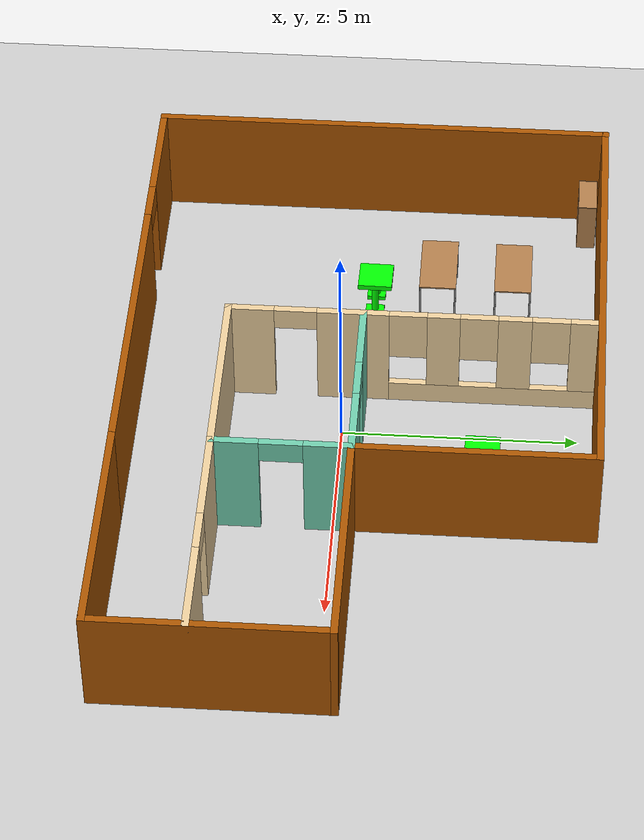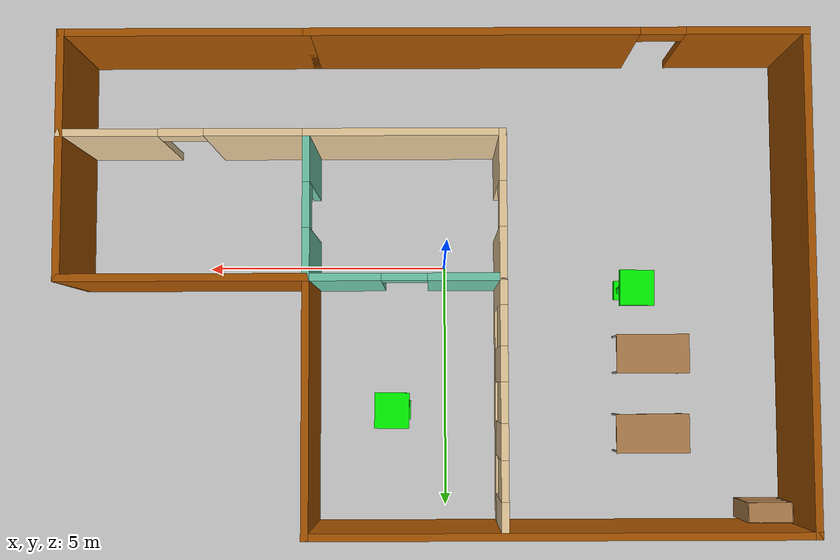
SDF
<sdf version="1.6">
 <world name="default">
  <plugin name="hello" filename="libhello.so"/>
  <light name="sun" type="directional">
   <pose>0 0 10 0 -0 0</pose>
   <diffuse>0.8 0.8 0.8 1</diffuse>
   <specular>0.1 0.1 0.1 1</specular>
   <attenuation>
    <range>1000</range>
    <constant>0.9</constant>
    <linear>0.01</linear>
    <quadratic>0.001</quadratic>
   </attenuation>
   <direction>-0.5 0.5 -1</direction>
  </light>
  <model name="ground_plane">
   <static>1</static>
   <link name="link">
    <collision name="collision">
     <geometry><plane><normal>0 0 1</normal><size>100 100</size></plane></geometry>
     <surface>
      <contact><collide_bitmask>65535</collide_bitmask></contact>
      <friction><ode><mu>100</mu><mu2>50</mu2></ode></friction>
     </surface>
    </collision>
    <visual name="visual">
     <cast_shadows>0</cast_shadows>
     <geometry><plane><normal>0 0 1</normal><size>100 100</size></plane></geometry>
     <material>
      <script><uri>file://media/materials/scripts/gazebo.material</uri><name>Gazebo/Grey</name></script>
     </material>
    </visual>
   </link>
  </model>
  <gravity>0 0 -9.8</gravity>
  <magnetic_field>6e-06 2.3e-05 -4.2e-05</magnetic_field>
  <atmosphere type="adiabatic"/>
  <physics name="default_physics" default="0" type="ode">
   <max_step_size>0.001</max_step_size>
   <real_time_factor>1</real_time_factor>
   <real_time_update_rate>1000</real_time_update_rate>
  </physics>
  <scene><ambient>0.4 0.4 0.4 1</ambient><background>0.7 0.7 0.7 1</background><shadows>1</shadows></scene>
  <spherical_coordinates>
   <surface_model>EARTH_WGS84</surface_model>
   <latitude_deg>0</latitude_deg>
   <longitude_deg>0</longitude_deg>
   <elevation>0</elevation>
   <heading_deg>0</heading_deg>
  </spherical_coordinates>
  <model name="Building">
   <pose>0.22127 0.472438 0 0 -0 0</pose>
   <link name="Wall_19">
    <collision name="Wall_19_Collision">
     <geometry><box><size>10 0.15 2.5</size></box></geometry>
     <pose>0 0 1.25 0 -0 0</pose>
    </collision>
    <visual name="Wall_19_Visual">
     <pose>0 0 1.25 0 -0 0</pose>
     <geometry><box><size>10 0.15 2.5</size></box></geometry>
     <material>
      <script><uri>file://media/materials/scripts/gazebo.material</uri><name>Gazebo/Grey</name></script>
      <ambient>0.666667 0.333333 0 1</ambient>
     </material>
     <meta><layer>0</layer></meta>
    </visual>
    <pose>-7.35 0 0 0 0 -1.5708</pose>
   </link>
   <link name="Wall_20">
    <pose>-2.425 -4.925 0 0 -0 0</pose>
    <visual name="Wall_20_Visual_0">
     <pose>-3.77711 0 1.25 0 -0 0</pose>
     <geometry><box><size>2.44579 0.15 2.5</size></box></geometry>
     <material>
      <script><uri>file://media/materials/scripts/gazebo.material</uri><name>Gazebo/Grey</name></script>
      <ambient>0.666667 0.333333 0 1</ambient>
     </material>
     <meta><layer>0</layer></meta>
    </visual>
    <collision name="Wall_20_Collision_0">
     <geometry><box><size>2.44579 0.15 2.5</size></box></geometry>
     <pose>-3.77711 0 1.25 0 -0 0</pose>
    </collision>
    <visual name="Wall_20_Visual_1">
     <pose>1.67289 0 1.25 0 -0 0</pose>
     <geometry><box><size>6.65421 0.15 2.5</size></box></geometry>
     <material>
      <script><uri>file://media/materials/scripts/gazebo.material</uri><name>Gazebo/Grey</name></script>
      <ambient>0.666667 0.333333 0 1</ambient>
     </material>
     <meta><layer>0</layer></meta>
    </visual>
    <collision name="Wall_20_Collision_1">
     <geometry><box><size>6.65421 0.15 2.5</size></box></geometry>
     <pose>1.67289 0 1.25 0 -0 0</pose>
    </collision>
    <visual name="Wall_20_Visual_2">
     <pose>-2.10421 0 2.25 0 -0 0</pose>
     <geometry><box><size>0.9 0.15 0.5</size></box></geometry>
     <material>
      <script><uri>file://media/materials/scripts/gazebo.material</uri><name>Gazebo/Grey</name></script>
      <ambient>0.666667 0.333333 0 1</ambient>
     </material>
     <meta><layer>0</layer></meta>
    </visual>
    <collision name="Wall_20_Collision_2">
     <geometry><box><size>0.9 0.15 0.5</size></box></geometry>
     <pose>-2.10421 0 2.25 0 -0 0</pose>
    </collision>
   </link>
   <link name="Wall_22">
    <pose>0.575 -0.075 0 0 -0 3.14159</pose>
    <visual name="Wall_22_Visual_0">
     <pose>-1.22681 0 1.25 0 -0 0</pose>
     <geometry><box><size>1.54637 0.15 2.5</size></box></geometry>
     <material>
      <script><uri>file://media/materials/scripts/gazebo.material</uri><name>Gazebo/Grey</name></script>
      <ambient>0.435294 0.796078 0.67451 1</ambient>
     </material>
     <meta><layer>0</layer></meta>
    </visual>
    <collision name="Wall_22_Collision_0">
     <geometry><box><size>1.54637 0.15 2.5</size></box></geometry>
     <pose>-1.22681 0 1.25 0 -0 0</pose>
    </collision>
    <visual name="Wall_22_Visual_1">
     <pose>1.22319 0 1.25 0 -0 0</pose>
     <geometry><box><size>1.55363 0.15 2.5</size></box></geometry>
     <material>
      <script><uri>file://media/materials/scripts/gazebo.material</uri><name>Gazebo/Grey</name></script>
      <ambient>0.435294 0.796078 0.67451 1</ambient>
     </material>
     <meta><layer>0</layer></meta>
    </visual>
    <collision name="Wall_22_Collision_1">
     <geometry><box><size>1.55363 0.15 2.5</size></box></geometry>
     <pose>1.22319 0 1.25 0 -0 0</pose>
    </collision>
    <visual name="Wall_22_Visual_2">
     <pose>-0.003626 0 2.25 0 -0 0</pose>
     <geometry><box><size>0.9 0.15 0.5</size></box></geometry>
     <material>
      <script><uri>file://media/materials/scripts/gazebo.material</uri><name>Gazebo/Grey</name></script>
      <ambient>0.435294 0.796078 0.67451 1</ambient>
     </material>
     <meta><layer>0</layer></meta>
    </visual>
    <collision name="Wall_22_Collision_2">
     <geometry><box><size>0.9 0.15 0.5</size></box></geometry>
     <pose>-0.003626 0 2.25 0 -0 0</pose>
    </collision>
   </link>
   <link name="Wall_25">
    <collision name="Wall_25_Collision">
     <geometry><box><size>10 0.15 2.5</size></box></geometry>
     <pose>0 0 1.25 0 -0 0</pose>
    </collision>
    <visual name="Wall_25_Visual">
     <pose>0 0 1.25 0 -0 0</pose>
     <geometry><box><size>10 0.15 2.5</size></box></geometry>
     <material>
      <script><uri>file://media/materials/scripts/gazebo.material</uri><name>Gazebo/Grey</name></script>
      <ambient>0.666667 0.333333 0 1</ambient>
     </material>
     <meta><layer>0</layer></meta>
    </visual>
    <pose>-2.425 4.925 0 0 -0 0</pose>
   </link>
   <link name="Wall_26">
    <collision name="Wall_26_Collision">
     <geometry><box><size>5.15 0.15 2.5</size></box></geometry>
     <pose>0 0 1.25 0 -0 0</pose>
    </collision>
    <visual name="Wall_26_Visual">
     <pose>0 0 1.25 0 -0 0</pose>
     <geometry><box><size>5.15 0.15 2.5</size></box></geometry>
     <material>
      <script><uri>file://media/materials/scripts/gazebo.material</uri><name>Gazebo/Grey</name></script>
      <ambient>0.666667 0.333333 0 1</ambient>
     </material>
     <meta><layer>0</layer></meta>
    </visual>
    <pose>2.5 2.425 0 0 0 -1.5708</pose>
   </link>
   <link name="Wall_28">
    <pose>-1.35 2.35 0 0 -0 1.5708</pose>
    <visual name="Wall_28_Visual_0">
     <pose>-2.19175 0 1.25 0 -0 0</pose>
     <geometry><box><size>0.616494 0.15 2.5</size></box></geometry>
     <material>
      <script><uri>file://media/materials/scripts/gazebo.material</uri><name>Gazebo/Grey</name></script>
      <ambient>0.921569 0.807843 0.615686 1</ambient>
     </material>
     <meta><layer>0</layer></meta>
    </visual>
    <collision name="Wall_28_Collision_0">
     <geometry><box><size>0.616494 0.15 2.5</size></box></geometry>
     <pose>-2.19175 0 1.25 0 -0 0</pose>
    </collision>
    <visual name="Wall_28_Visual_1">
     <pose>0.308247 0 0.25 0 -0 0</pose>
     <geometry><box><size>4.38351 0.15 0.5</size></box></geometry>
     <material>
      <script><uri>file://media/materials/scripts/gazebo.material</uri><name>Gazebo/Grey</name></script>
      <ambient>0.921569 0.807843 0.615686 1</ambient>
     </material>
     <meta><layer>0</layer></meta>
    </visual>
    <collision name="Wall_28_Collision_1">
     <geometry><box><size>4.38351 0.15 0.5</size></box></geometry>
     <pose>0.308247 0 0.25 0 -0 0</pose>
    </collision>
    <visual name="Wall_28_Visual_2">
     <pose>-0.737291 0 1.5 0 -0 0</pose>
     <geometry><box><size>0.692431 0.15 2</size></box></geometry>
     <material>
      <script><uri>file://media/materials/scripts/gazebo.material</uri><name>Gazebo/Grey</name></script>
      <ambient>0.921569 0.807843 0.615686 1</ambient>
     </material>
     <meta><layer>0</layer></meta>
    </visual>
    <collision name="Wall_28_Collision_2">
     <geometry><box><size>0.692431 0.15 2</size></box></geometry>
     <pose>-0.737291 0 1.5 0 -0 0</pose>
    </collision>
    <visual name="Wall_28_Visual_3">
     <pose>0.763619 0 1.5 0 -0 0</pose>
     <geometry><box><size>0.70939 0.15 2</size></box></geometry>
     <material>
      <script><uri>file://media/materials/scripts/gazebo.material</uri><name>Gazebo/Grey</name></script>
      <ambient>0.921569 0.807843 0.615686 1</ambient>
     </material>
     <meta><layer>0</layer></meta>
    </visual>
    <collision name="Wall_28_Collision_3">
     <geometry><box><size>0.70939 0.15 2</size></box></geometry>
     <pose>0.763619 0 1.5 0 -0 0</pose>
    </collision>
    <visual name="Wall_28_Visual_4">
     <pose>2.20916 0 1.5 0 -0 0</pose>
     <geometry><box><size>0.581686 0.15 2</size></box></geometry>
     <material>
      <script><uri>file://media/materials/scripts/gazebo.material</uri><name>Gazebo/Grey</name></script>
      <ambient>0.921569 0.807843 0.615686 1</ambient>
     </material>
     <meta><layer>0</layer></meta>
    </visual>
    <collision name="Wall_28_Collision_4">
     <geometry><box><size>0.581686 0.15 2</size></box></geometry>
     <pose>2.20916 0 1.5 0 -0 0</pose>
    </collision>
    <visual name="Wall_28_Visual_5">
     <pose>-1.48351 0 1.9 0 -0 0</pose>
     <geometry><box><size>0.8 0.15 1.2</size></box></geometry>
     <material>
      <script><uri>file://media/materials/scripts/gazebo.material</uri><name>Gazebo/Grey</name></script>
      <ambient>0.921569 0.807843 0.615686 1</ambient>
     </material>
     <meta><layer>0</layer></meta>
    </visual>
    <collision name="Wall_28_Collision_5">
     <geometry><box><size>0.8 0.15 1.2</size></box></geometry>
     <pose>-1.48351 0 1.9 0 -0 0</pose>
    </collision>
    <visual name="Wall_28_Visual_6">
     <pose>0.008924 0 1.9 0 -0 0</pose>
     <geometry><box><size>0.8 0.15 1.2</size></box></geometry>
     <material>
      <script><uri>file://media/materials/scripts/gazebo.material</uri><name>Gazebo/Grey</name></script>
      <ambient>0.921569 0.807843 0.615686 1</ambient>
     </material>
     <meta><layer>0</layer></meta>
    </visual>
    <collision name="Wall_28_Collision_6">
     <geometry><box><size>0.8 0.15 1.2</size></box></geometry>
     <pose>0.008924 0 1.9 0 -0 0</pose>
    </collision>
    <visual name="Wall_28_Visual_7">
     <pose>1.51831 0 1.9 0 -0 0</pose>
     <geometry><box><size>0.8 0.15 1.2</size></box></geometry>
     <material>
      <script><uri>file://media/materials/scripts/gazebo.material</uri><name>Gazebo/Grey</name></script>
      <ambient>0.921569 0.807843 0.615686 1</ambient>
     </material>
     <meta><layer>0</layer></meta>
    </visual>
    <collision name="Wall_28_Collision_7">
     <geometry><box><size>0.8 0.15 1.2</size></box></geometry>
     <pose>1.51831 0 1.9 0 -0 0</pose>
    </collision>
   </link>
   <link name="Wall_30">
    <collision name="Wall_30_Collision">
     <geometry><box><size>5 0.15 2.5</size></box></geometry>
     <pose>0 0 1.25 0 -0 0</pose>
    </collision>
    <visual name="Wall_30_Visual">
     <pose>0 0 1.25 0 -0 0</pose>
     <geometry><box><size>5 0.15 2.5</size></box></geometry>
     <material>
      <script><uri>file://media/materials/scripts/gazebo.material</uri><name>Gazebo/Grey</name></script>
      <ambient>0.666667 0.333333 0 1</ambient>
     </material>
     <meta><layer>0</layer></meta>
    </visual>
    <pose>4.925 -0.075 0 0 -0 0</pose>
   </link>
   <link name="Wall_32">
    <collision name="Wall_32_Collision">
     <geometry><box><size>5 0.15 2.5</size></box></geometry>
     <pose>0 0 1.25 0 -0 0</pose>
    </collision>
    <visual name="Wall_32_Visual">
     <pose>0 0 1.25 0 -0 0</pose>
     <geometry><box><size>5 0.15 2.5</size></box></geometry>
     <material>
      <script><uri>file://media/materials/scripts/gazebo.material</uri><name>Gazebo/Grey</name></script>
      <ambient>0.666667 0.333333 0 1</ambient>
     </material>
     <meta><layer>0</layer></meta>
    </visual>
    <pose>4.925 -4.925 0 0 -0 0</pose>
   </link>
   <link name="Wall_33">
    <collision name="Wall_33_Collision">
     <geometry><box><size>5 0.15 2.5</size></box></geometry>
     <pose>0 0 1.25 0 -0 0</pose>
    </collision>
    <visual name="Wall_33_Visual">
     <pose>0 0 1.25 0 -0 0</pose>
     <geometry><box><size>5 0.15 2.5</size></box></geometry>
     <material>
      <script><uri>file://media/materials/scripts/gazebo.material</uri><name>Gazebo/Grey</name></script>
      <ambient>0.666667 0.333333 0 1</ambient>
     </material>
     <meta><layer>0</layer></meta>
    </visual>
    <pose>7.35 -2.5 0 0 -0 1.5708</pose>
   </link>
   <link name="Wall_39">
    <pose>2.5 -1.5 0 0 0 -1.5708</pose>
    <visual name="Wall_39_Visual_0">
     <pose>-0.975473 0 1.25 0 -0 0</pose>
     <geometry><box><size>1.04905 0.15 2.5</size></box></geometry>
     <material>
      <script><uri>file://media/materials/scripts/gazebo.material</uri><name>Gazebo/Grey</name></script>
      <ambient>0.435294 0.796078 0.67451 1</ambient>
     </material>
     <meta><layer>0</layer></meta>
    </visual>
    <collision name="Wall_39_Collision_0">
     <geometry><box><size>1.04905 0.15 2.5</size></box></geometry>
     <pose>-0.975473 0 1.25 0 -0 0</pose>
    </collision>
    <visual name="Wall_39_Visual_1">
     <pose>0.974527 0 1.25 0 -0 0</pose>
     <geometry><box><size>1.05095 0.15 2.5</size></box></geometry>
     <material>
      <script><uri>file://media/materials/scripts/gazebo.material</uri><name>Gazebo/Grey</name></script>
      <ambient>0.435294 0.796078 0.67451 1</ambient>
     </material>
     <meta><layer>0</layer></meta>
    </visual>
    <collision name="Wall_39_Collision_1">
     <geometry><box><size>1.05095 0.15 2.5</size></box></geometry>
     <pose>0.974527 0 1.25 0 -0 0</pose>
    </collision>
    <visual name="Wall_39_Visual_2">
     <pose>-0.000946 0 2.25 0 -0 0</pose>
     <geometry><box><size>0.9 0.15 0.5</size></box></geometry>
     <material>
      <script><uri>file://media/materials/scripts/gazebo.material</uri><name>Gazebo/Grey</name></script>
      <ambient>0.435294 0.796078 0.67451 1</ambient>
     </material>
     <meta><layer>0</layer></meta>
    </visual>
    <collision name="Wall_39_Collision_2">
     <geometry><box><size>0.9 0.15 0.5</size></box></geometry>
     <pose>-0.000946 0 2.25 0 -0 0</pose>
    </collision>
   </link>
   <link name="Wall_40">
    <pose>4.925 -2.925 0 0 -0 0</pose>
    <visual name="Wall_40_Visual_0">
     <pose>-1.45777 0 1.25 0 -0 0</pose>
     <geometry><box><size>2.08446 0.15 2.5</size></box></geometry>
     <material>
      <script><uri>file://media/materials/scripts/gazebo.material</uri><name>Gazebo/Grey</name></script>
      <ambient>0.921569 0.807843 0.615686 1</ambient>
     </material>
     <meta><layer>0</layer></meta>
    </visual>
    <collision name="Wall_40_Collision_0">
     <geometry><box><size>2.08446 0.15 2.5</size></box></geometry>
     <pose>-1.45777 0 1.25 0 -0 0</pose>
    </collision>
    <visual name="Wall_40_Visual_1">
     <pose>1.49223 0 1.25 0 -0 0</pose>
     <geometry><box><size>2.01554 0.15 2.5</size></box></geometry>
     <material>
      <script><uri>file://media/materials/scripts/gazebo.material</uri><name>Gazebo/Grey</name></script>
      <ambient>0.921569 0.807843 0.615686 1</ambient>
     </material>
     <meta><layer>0</layer></meta>
    </visual>
    <collision name="Wall_40_Collision_1">
     <geometry><box><size>2.01554 0.15 2.5</size></box></geometry>
     <pose>1.49223 0 1.25 0 -0 0</pose>
    </collision>
    <visual name="Wall_40_Visual_2">
     <pose>0.034462 0 2.25 0 -0 0</pose>
     <geometry><box><size>0.9 0.15 0.5</size></box></geometry>
     <material>
      <script><uri>file://media/materials/scripts/gazebo.material</uri><name>Gazebo/Grey</name></script>
      <ambient>0.921569 0.807843 0.615686 1</ambient>
     </material>
     <meta><layer>0</layer></meta>
    </visual>
    <collision name="Wall_40_Collision_2">
     <geometry><box><size>0.9 0.15 0.5</size></box></geometry>
     <pose>0.034462 0 2.25 0 -0 0</pose>
    </collision>
   </link>
   <link name="Wall_43">
    <collision name="Wall_43_Collision">
     <geometry><box><size>4 0.15 2.5</size></box></geometry>
     <pose>0 0 1.25 0 -0 0</pose>
    </collision>
    <visual name="Wall_43_Visual">
     <pose>0 0 1.25 0 -0 0</pose>
     <geometry><box><size>4 0.15 2.5</size></box></geometry>
     <material>
      <script><uri>file://media/materials/scripts/gazebo.material</uri><name>Gazebo/Grey</name></script>
      <ambient>0.921569 0.807843 0.615686 1</ambient>
     </material>
     <meta><layer>0</layer></meta>
    </visual>
    <pose>0.575 -2.925 0 0 -0 3.14159</pose>
   </link>
   <link name="Wall_44">
    <pose>-1.35 -1.5 0 0 -0 1.5708</pose>
    <visual name="Wall_44_Visual_0">
     <pose>-0.978456 0 1.25 0 -0 0</pose>
     <geometry><box><size>1.04309 0.15 2.5</size></box></geometry>
     <material>
      <script><uri>file://media/materials/scripts/gazebo.material</uri><name>Gazebo/Grey</name></script>
      <ambient>0.921569 0.807843 0.615686 1</ambient>
     </material>
     <meta><layer>0</layer></meta>
    </visual>
    <collision name="Wall_44_Collision_0">
     <geometry><box><size>1.04309 0.15 2.5</size></box></geometry>
     <pose>-0.978456 0 1.25 0 -0 0</pose>
    </collision>
    <visual name="Wall_44_Visual_1">
     <pose>0.971544 0 1.25 0 -0 0</pose>
     <geometry><box><size>1.05691 0.15 2.5</size></box></geometry>
     <material>
      <script><uri>file://media/materials/scripts/gazebo.material</uri><name>Gazebo/Grey</name></script>
      <ambient>0.921569 0.807843 0.615686 1</ambient>
     </material>
     <meta><layer>0</layer></meta>
    </visual>
    <collision name="Wall_44_Collision_1">
     <geometry><box><size>1.05691 0.15 2.5</size></box></geometry>
     <pose>0.971544 0 1.25 0 -0 0</pose>
    </collision>
    <visual name="Wall_44_Visual_2">
     <pose>-0.006911 0 2.25 0 -0 0</pose>
     <geometry><box><size>0.9 0.15 0.5</size></box></geometry>
     <material>
      <script><uri>file://media/materials/scripts/gazebo.material</uri><name>Gazebo/Grey</name></script>
      <ambient>0.921569 0.807843 0.615686 1</ambient>
     </material>
     <meta><layer>0</layer></meta>
    </visual>
    <collision name="Wall_44_Collision_2">
     <geometry><box><size>0.9 0.15 0.5</size></box></geometry>
     <pose>-0.006911 0 2.25 0 -0 0</pose>
    </collision>
   </link>
   <static>1</static>
  </model>
  <model name="table">
   <static>1</static>
   <link name="link">
    <collision name="surface">
     <pose>0 0 1 0 -0 0</pose>
     <geometry><box><size>1.5 0.8 0.03</size></box></geometry>
     <surface><friction><ode><mu>0.6</mu><mu2>0.6</mu2></ode></friction></surface>
    </collision>
    <visual name="visual1">
     <pose>0 0 1 0 -0 0</pose>
     <geometry><box><size>1.5 0.8 0.03</size></box></geometry>
     <material>
      <script><uri>file://media/materials/scripts/gazebo.material</uri><name>Gazebo/Wood</name></script>
     </material>
    </visual>
    <collision name="front_left_leg">
     <pose>0.68 0.38 0.5 0 -0 0</pose>
     <geometry><cylinder><radius>0.02</radius><length>1</length></cylinder></geometry>
    </collision>
    <visual name="front_left_leg">
     <pose>0.68 0.38 0.5 0 -0 0</pose>
     <geometry><cylinder><radius>0.02</radius><length>1</length></cylinder></geometry>
     <material>
      <script><uri>file://media/materials/scripts/gazebo.material</uri><name>Gazebo/Grey</name></script>
     </material>
    </visual>
    <collision name="front_right_leg">
     <pose>0.68 -0.38 0.5 0 -0 0</pose>
     <geometry><cylinder><radius>0.02</radius><length>1</length></cylinder></geometry>
    </collision>
    <visual name="front_right_leg">
     <pose>0.68 -0.38 0.5 0 -0 0</pose>
     <geometry><cylinder><radius>0.02</radius><length>1</length></cylinder></geometry>
     <material>
      <script><uri>file://media/materials/scripts/gazebo.material</uri><name>Gazebo/Grey</name></script>
     </material>
    </visual>
    <collision name="back_right_leg">
     <pose>-0.68 -0.38 0.5 0 -0 0</pose>
     <geometry><cylinder><radius>0.02</radius><length>1</length></cylinder></geometry>
    </collision>
    <visual name="back_right_leg">
     <pose>-0.68 -0.38 0.5 0 -0 0</pose>
     <geometry><cylinder><radius>0.02</radius><length>1</length></cylinder></geometry>
     <material>
      <script><uri>file://media/materials/scripts/gazebo.material</uri><name>Gazebo/Grey</name></script>
     </material>
    </visual>
    <collision name="back_left_leg">
     <pose>-0.68 0.38 0.5 0 -0 0</pose>
     <geometry><cylinder><radius>0.02</radius><length>1</length></cylinder></geometry>
    </collision>
    <visual name="back_left_leg">
     <pose>-0.68 0.38 0.5 0 -0 0</pose>
     <geometry><cylinder><radius>0.02</radius><length>1</length></cylinder></geometry>
     <material>
      <script><uri>file://media/materials/scripts/gazebo.material</uri><name>Gazebo/Grey</name></script>
     </material>
    </visual>
   </link>
   <pose>-4.24343 3.49657 0 0 -0 0</pose>
  </model>
  <model name="table_0">
   <static>1</static>
   <link name="link">
    <collision name="surface">
     <pose>0 0 1 0 -0 0</pose>
     <geometry><box><size>1.5 0.8 0.03</size></box></geometry>
     <surface><friction><ode><mu>0.6</mu><mu2>0.6</mu2></ode></friction></surface>
    </collision>
    <visual name="visual1">
     <pose>0 0 1 0 -0 0</pose>
     <geometry><box><size>1.5 0.8 0.03</size></box></geometry>
     <material>
      <script><uri>file://media/materials/scripts/gazebo.material</uri><name>Gazebo/Wood</name></script>
     </material>
    </visual>
    <collision name="front_left_leg">
     <pose>0.68 0.38 0.5 0 -0 0</pose>
     <geometry><cylinder><radius>0.02</radius><length>1</length></cylinder></geometry>
    </collision>
    <visual name="front_left_leg">
     <pose>0.68 0.38 0.5 0 -0 0</pose>
     <geometry><cylinder><radius>0.02</radius><length>1</length></cylinder></geometry>
     <material>
      <script><uri>file://media/materials/scripts/gazebo.material</uri><name>Gazebo/Grey</name></script>
     </material>
    </visual>
    <collision name="front_right_leg">
     <pose>0.68 -0.38 0.5 0 -0 0</pose>
     <geometry><cylinder><radius>0.02</radius><length>1</length></cylinder></geometry>
    </collision>
    <visual name="front_right_leg">
     <pose>0.68 -0.38 0.5 0 -0 0</pose>
     <geometry><cylinder><radius>0.02</radius><length>1</length></cylinder></geometry>
     <material>
      <script><uri>file://media/materials/scripts/gazebo.material</uri><name>Gazebo/Grey</name></script>
     </material>
    </visual>
    <collision name="back_right_leg">
     <pose>-0.68 -0.38 0.5 0 -0 0</pose>
     <geometry><cylinder><radius>0.02</radius><length>1</length></cylinder></geometry>
    </collision>
    <visual name="back_right_leg">
     <pose>-0.68 -0.38 0.5 0 -0 0</pose>
     <geometry><cylinder><radius>0.02</radius><length>1</length></cylinder></geometry>
     <material>
      <script><uri>file://media/materials/scripts/gazebo.material</uri><name>Gazebo/Grey</name></script>
     </material>
    </visual>
    <collision name="back_left_leg">
     <pose>-0.68 0.38 0.5 0 -0 0</pose>
     <geometry><cylinder><radius>0.02</radius><length>1</length></cylinder></geometry>
    </collision>
    <visual name="back_left_leg">
     <pose>-0.68 0.38 0.5 0 -0 0</pose>
     <geometry><cylinder><radius>0.02</radius><length>1</length></cylinder></geometry>
     <material>
      <script><uri>file://media/materials/scripts/gazebo.material</uri><name>Gazebo/Grey</name></script>
     </material>
    </visual>
   </link>
   <pose>-4.27013 1.85951 0 0 -0 0</pose>
  </model>
  <model name="HumanoidRobot_1">
   <link name="link_0">
    <pose>-0.25 -0 -0.281994 0 -0 0</pose>
    <inertial>
     <mass>0.0142113</mass>
     <inertia>
      <ixx>0.0001484</ixx>
      <ixy>0</ixy>
      <ixz>0</ixz>
      <iyy>0.00040332</iyy>
      <iyz>0</iyz>
      <izz>0.00053987</izz>
     </inertia>
    </inertial>
    <visual name="visual">
     <geometry><box><size>0.25 0.4 0.1</size></box></geometry>
     <material>
      <lighting>1</lighting>
      <script><uri>file://media/materials/scripts/gazebo.material</uri><name>Gazebo/Grey</name></script>
      <shader type="pixel"><normal_map>__default__</normal_map></shader>
      <ambient>0 1 0 1</ambient>
      <diffuse>0 1 0 1</diffuse>
      <specular>0.01 0.01 0.01 1</specular>
      <emissive>0 0 0 1</emissive>
     </material>
    </visual>
    <collision name="collision">
     <geometry><box><size>0.25 0.4 0.1</size></box></geometry>
     <surface>
      <friction>
       <ode><mu>1</mu><mu2>1</mu2><fdir1>0 0 0</fdir1><slip1>0</slip1><slip2>0</slip2></ode>
       <torsional>
        <coefficient>1</coefficient>
        <patch_radius>0</patch_radius>
        <surface_radius>0</surface_radius>
        <use_patch_radius>1</use_patch_radius>
        <ode><slip>0</slip></ode>
       </torsional>
      </friction>
      <bounce><restitution_coefficient>0</restitution_coefficient><threshold>1e+06</threshold></bounce>
      <contact>
       <collide_without_contact>0</collide_without_contact>
       <collide_without_contact_bitmask>1</collide_without_contact_bitmask>
       <collide_bitmask>1</collide_bitmask>
       <ode>
        <soft_cfm>0</soft_cfm>
        <soft_erp>0.2</soft_erp>
        <kp>1e+13</kp>
        <kd>1</kd>
        <max_vel>0.01</max_vel>
        <min_depth>0</min_depth>
       </ode>
       <bullet>
        <split_impulse>1</split_impulse>
        <split_impulse_penetration_threshold>-0.01</split_impulse_penetration_threshold>
        <soft_cfm>0</soft_cfm>
        <soft_erp>0.2</soft_erp>
        <kp>1e+13</kp>
        <kd>1</kd>
       </bullet>
      </contact>
     </surface>
    </collision>
   </link>
   <link name="link_0_clone">
    <pose>0.25 0 -0.281994 0 -0 0</pose>
    <inertial>
     <mass>0.0142113</mass>
     <inertia>
      <ixx>0.0001484</ixx>
      <ixy>0</ixy>
      <ixz>0</ixz>
      <iyy>0.00040332</iyy>
      <iyz>0</iyz>
      <izz>0.00053987</izz>
     </inertia>
    </inertial>
    <visual name="visual">
     <geometry><box><size>0.25 0.4 0.1</size></box></geometry>
     <material>
      <lighting>1</lighting>
      <script><uri>file://media/materials/scripts/gazebo.material</uri><name>Gazebo/Grey</name></script>
      <shader type="pixel"><normal_map>__default__</normal_map></shader>
      <ambient>0 1 0 1</ambient>
      <diffuse>0 1 0 1</diffuse>
      <specular>0.01 0.01 0.01 1</specular>
      <emissive>0 0 0 1</emissive>
     </material>
    </visual>
    <collision name="collision">
     <geometry><box><size>0.25 0.4 0.1</size></box></geometry>
     <surface>
      <friction>
       <ode><mu>1</mu><mu2>1</mu2><fdir1>0 0 0</fdir1><slip1>0</slip1><slip2>0</slip2></ode>
       <torsional>
        <coefficient>1</coefficient>
        <patch_radius>0</patch_radius>
        <surface_radius>0</surface_radius>
        <use_patch_radius>1</use_patch_radius>
        <ode><slip>0</slip></ode>
       </torsional>
      </friction>
      <bounce><restitution_coefficient>0</restitution_coefficient><threshold>1e+06</threshold></bounce>
      <contact>
       <collide_without_contact>0</collide_without_contact>
       <collide_without_contact_bitmask>1</collide_without_contact_bitmask>
       <collide_bitmask>1</collide_bitmask>
       <ode>
        <soft_cfm>0</soft_cfm>
        <soft_erp>0.2</soft_erp>
        <kp>1e+13</kp>
        <kd>1</kd>
        <max_vel>0.01</max_vel>
        <min_depth>0</min_depth>
       </ode>
       <bullet>
        <split_impulse>1</split_impulse>
        <split_impulse_penetration_threshold>-0.01</split_impulse_penetration_threshold>
        <soft_cfm>0</soft_cfm>
        <soft_erp>0.2</soft_erp>
        <kp>1e+13</kp>
        <kd>1</kd>
       </bullet>
      </contact>
     </surface>
    </collision>
   </link>
   <link name="link_1">
    <pose>-0.25 -0 0.043006 0 -0 0</pose>
    <inertial>
     <mass>0.023313</mass>
     <inertia>
      <ixx>0.00197672</ixx>
      <ixy>0</ixy>
      <ixz>0</ixz>
      <iyy>0.00197672</iyy>
      <iyz>0</iyz>
      <izz>6.794e-05</izz>
     </inertia>
    </inertial>
    <visual name="visual">
     <geometry><cylinder><radius>0.076344</radius><length>0.75</length></cylinder></geometry>
     <material>
      <lighting>1</lighting>
      <script><uri>file://media/materials/scripts/gazebo.material</uri><name>Gazebo/Grey</name></script>
      <shader type="pixel"><normal_map>__default__</normal_map></shader>
      <ambient>0 1 0 1</ambient>
      <diffuse>0 1 0 1</diffuse>
      <specular>0.01 0.01 0.01 1</specular>
      <emissive>0 0 0 1</emissive>
     </material>
    </visual>
    <collision name="collision">
     <geometry><cylinder><radius>0.076344</radius><length>0.75</length></cylinder></geometry>
     <surface>
      <friction>
       <ode><mu>1</mu><mu2>1</mu2><fdir1>0 0 0</fdir1><slip1>0</slip1><slip2>0</slip2></ode>
       <torsional>
        <coefficient>1</coefficient>
        <patch_radius>0</patch_radius>
        <surface_radius>0</surface_radius>
        <use_patch_radius>1</use_patch_radius>
        <ode><slip>0</slip></ode>
       </torsional>
      </friction>
      <bounce><restitution_coefficient>0</restitution_coefficient><threshold>1e+06</threshold></bounce>
      <contact>
       <collide_without_contact>0</collide_without_contact>
       <collide_without_contact_bitmask>1</collide_without_contact_bitmask>
       <collide_bitmask>1</collide_bitmask>
       <ode>
        <soft_cfm>0</soft_cfm>
        <soft_erp>0.2</soft_erp>
        <kp>1e+13</kp>
        <kd>1</kd>
        <max_vel>0.01</max_vel>
        <min_depth>0</min_depth>
       </ode>
       <bullet>
        <split_impulse>1</split_impulse>
        <split_impulse_penetration_threshold>-0.01</split_impulse_penetration_threshold>
        <soft_cfm>0</soft_cfm>
        <soft_erp>0.2</soft_erp>
        <kp>1e+13</kp>
        <kd>1</kd>
       </bullet>
      </contact>
     </surface>
    </collision>
   </link>
   <link name="link_1_clone">
    <pose>0.25 0 0.043006 0 -0 0</pose>
    <inertial>
     <mass>0.023313</mass>
     <inertia>
      <ixx>0.00197672</ixx>
      <ixy>0</ixy>
      <ixz>0</ixz>
      <iyy>0.00197672</iyy>
      <iyz>0</iyz>
      <izz>6.794e-05</izz>
     </inertia>
    </inertial>
    <visual name="visual">
     <geometry><cylinder><radius>0.076344</radius><length>0.75</length></cylinder></geometry>
     <material>
      <lighting>1</lighting>
      <script><uri>file://media/materials/scripts/gazebo.material</uri><name>Gazebo/Grey</name></script>
      <shader type="pixel"><normal_map>__default__</normal_map></shader>
      <ambient>0 1 0 1</ambient>
      <diffuse>0 1 0 1</diffuse>
      <specular>0.01 0.01 0.01 1</specular>
      <emissive>0 0 0 1</emissive>
     </material>
    </visual>
    <collision name="collision">
     <geometry><cylinder><radius>0.076344</radius><length>0.75</length></cylinder></geometry>
     <surface>
      <friction>
       <ode><mu>1</mu><mu2>1</mu2><fdir1>0 0 0</fdir1><slip1>0</slip1><slip2>0</slip2></ode>
       <torsional>
        <coefficient>1</coefficient>
        <patch_radius>0</patch_radius>
        <surface_radius>0</surface_radius>
        <use_patch_radius>1</use_patch_radius>
        <ode><slip>0</slip></ode>
       </torsional>
      </friction>
      <bounce><restitution_coefficient>0</restitution_coefficient><threshold>1e+06</threshold></bounce>
      <contact>
       <collide_without_contact>0</collide_without_contact>
       <collide_without_contact_bitmask>1</collide_without_contact_bitmask>
       <collide_bitmask>1</collide_bitmask>
       <ode>
        <soft_cfm>0</soft_cfm>
        <soft_erp>0.2</soft_erp>
        <kp>1e+13</kp>
        <kd>1</kd>
        <max_vel>0.01</max_vel>
        <min_depth>0</min_depth>
       </ode>
       <bullet>
        <split_impulse>1</split_impulse>
        <split_impulse_penetration_threshold>-0.01</split_impulse_penetration_threshold>
        <soft_cfm>0</soft_cfm>
        <soft_erp>0.2</soft_erp>
        <kp>1e+13</kp>
        <kd>1</kd>
       </bullet>
      </contact>
     </surface>
    </collision>
   </link>
   <link name="link_2">
    <pose>0 -0 0.477976 0 -0 0</pose>
    <inertial>
     <mass>0.0626193</mass>
     <inertia>
      <ixx>0.00289021</ixx>
      <ixy>0</ixy>
      <ixz>0</ixz>
      <iyy>0.00271268</iyy>
      <iyz>0</iyz>
      <izz>0.00545276</izz>
     </inertia>
    </inertial>
    <visual name="visual">
     <geometry><box><size>0.710955 0.734492 0.119941</size></box></geometry>
     <material>
      <lighting>1</lighting>
      <script><uri>file://media/materials/scripts/gazebo.material</uri><name>Gazebo/Grey</name></script>
      <shader type="pixel"><normal_map>__default__</normal_map></shader>
      <ambient>0 1 0 1</ambient>
      <diffuse>0 1 0 1</diffuse>
      <specular>0.01 0.01 0.01 1</specular>
      <emissive>0 0 0 1</emissive>
     </material>
    </visual>
    <collision name="collision">
     <geometry><box><size>0.710955 0.734492 0.119941</size></box></geometry>
     <surface>
      <friction>
       <ode><mu>1</mu><mu2>1</mu2><fdir1>0 0 0</fdir1><slip1>0</slip1><slip2>0</slip2></ode>
       <torsional>
        <coefficient>1</coefficient>
        <patch_radius>0</patch_radius>
        <surface_radius>0</surface_radius>
        <use_patch_radius>1</use_patch_radius>
        <ode><slip>0</slip></ode>
       </torsional>
      </friction>
      <bounce><restitution_coefficient>0</restitution_coefficient><threshold>1e+06</threshold></bounce>
      <contact>
       <collide_without_contact>0</collide_without_contact>
       <collide_without_contact_bitmask>1</collide_without_contact_bitmask>
       <collide_bitmask>1</collide_bitmask>
       <ode>
        <soft_cfm>0</soft_cfm>
        <soft_erp>0.2</soft_erp>
        <kp>1e+13</kp>
        <kd>1</kd>
        <max_vel>0.01</max_vel>
        <min_depth>0</min_depth>
       </ode>
       <bullet>
        <split_impulse>1</split_impulse>
        <split_impulse_penetration_threshold>-0.01</split_impulse_penetration_threshold>
        <soft_cfm>0</soft_cfm>
        <soft_erp>0.2</soft_erp>
        <kp>1e+13</kp>
        <kd>1</kd>
       </bullet>
      </contact>
     </surface>
    </collision>
   </link>
   <joint name="link_0_JOINT_1" type="revolute">
    <parent>link_0</parent>
    <child>link_1</child>
    <axis>
     <xyz>1 0 0</xyz>
     <use_parent_model_frame>0</use_parent_model_frame>
     <limit>
      <lower>-1.79769e+308</lower>
      <upper>1.79769e+308</upper>
      <effort>-1</effort>
      <velocity>-1</velocity>
     </limit>
     <dynamics>
      <spring_reference>0</spring_reference>
      <spring_stiffness>0</spring_stiffness>
      <damping>0</damping>
      <friction>0</friction>
     </dynamics>
    </axis>
    <physics>
     <ode><limit><cfm>0</cfm><erp>0.2</erp></limit><suspension><cfm>0</cfm><erp>0.2</erp></suspension></ode>
    </physics>
   </joint>
   <joint name="link_1_JOINT_4" type="revolute">
    <parent>link_1</parent>
    <child>link_2</child>
    <axis>
     <xyz>1 0 0</xyz>
     <use_parent_model_frame>0</use_parent_model_frame>
     <limit>
      <lower>-1.79769e+308</lower>
      <upper>1.79769e+308</upper>
      <effort>-1</effort>
      <velocity>-1</velocity>
     </limit>
     <dynamics>
      <spring_reference>0</spring_reference>
      <spring_stiffness>0</spring_stiffness>
      <damping>0</damping>
      <friction>0</friction>
     </dynamics>
    </axis>
    <physics>
     <ode><limit><cfm>0</cfm><erp>0.2</erp></limit><suspension><cfm>0</cfm><erp>0.2</erp></suspension></ode>
    </physics>
   </joint>
   <joint name="link_1_clone_JOINT_2" type="revolute">
    <parent>link_1_clone</parent>
    <child>link_0_clone</child>
    <axis>
     <xyz>1 0 0</xyz>
     <use_parent_model_frame>0</use_parent_model_frame>
     <limit>
      <lower>-1.79769e+308</lower>
      <upper>1.79769e+308</upper>
      <effort>-1</effort>
      <velocity>-1</velocity>
     </limit>
     <dynamics>
      <spring_reference>0</spring_reference>
      <spring_stiffness>0</spring_stiffness>
      <damping>0</damping>
      <friction>0</friction>
     </dynamics>
    </axis>
    <physics>
     <ode><limit><cfm>0</cfm><erp>0.2</erp></limit><suspension><cfm>0</cfm><erp>0.2</erp></suspension></ode>
    </physics>
   </joint>
   <joint name="link_1_clone_JOINT_3" type="revolute">
    <parent>link_1_clone</parent>
    <child>link_2</child>
    <axis>
     <xyz>1 0 0</xyz>
     <use_parent_model_frame>0</use_parent_model_frame>
     <limit>
      <lower>-1.79769e+308</lower>
      <upper>1.79769e+308</upper>
      <effort>-1</effort>
      <velocity>-1</velocity>
     </limit>
     <dynamics>
      <spring_reference>0</spring_reference>
      <spring_stiffness>0</spring_stiffness>
      <damping>0</damping>
      <friction>0</friction>
     </dynamics>
    </axis>
    <physics>
     <ode><limit><cfm>0</cfm><erp>0.2</erp></limit><suspension><cfm>0</cfm><erp>0.2</erp></suspension></ode>
    </physics>
   </joint>
   <static>0</static>
   <pose>-3.98812 0.487527 0.331994 -3e-06 1e-06 -0.016518</pose>
  </model>
  <model name="HumanoidRobot">
   <link name="link_0">
    <pose>-0.25 -0 -0.281994 0 -0 0</pose>
    <inertial>
     <mass>0.0142113</mass>
     <inertia>
      <ixx>0.0001484</ixx>
      <ixy>0</ixy>
      <ixz>0</ixz>
      <iyy>0.00040332</iyy>
      <iyz>0</iyz>
      <izz>0.00053987</izz>
     </inertia>
    </inertial>
    <visual name="visual">
     <geometry><box><size>0.25 0.4 0.1</size></box></geometry>
     <material>
      <lighting>1</lighting>
      <script><uri>file://media/materials/scripts/gazebo.material</uri><name>Gazebo/Grey</name></script>
      <shader type="pixel"><normal_map>__default__</normal_map></shader>
      <ambient>0 1 0 1</ambient>
      <diffuse>0 1 0 1</diffuse>
      <specular>0.01 0.01 0.01 1</specular>
      <emissive>0 0 0 1</emissive>
     </material>
    </visual>
    <collision name="collision">
     <geometry><box><size>0.25 0.4 0.1</size></box></geometry>
     <surface>
      <friction>
       <ode><mu>1</mu><mu2>1</mu2><fdir1>0 0 0</fdir1><slip1>0</slip1><slip2>0</slip2></ode>
       <torsional>
        <coefficient>1</coefficient>
        <patch_radius>0</patch_radius>
        <surface_radius>0</surface_radius>
        <use_patch_radius>1</use_patch_radius>
        <ode><slip>0</slip></ode>
       </torsional>
      </friction>
      <bounce><restitution_coefficient>0</restitution_coefficient><threshold>1e+06</threshold></bounce>
      <contact>
       <collide_without_contact>0</collide_without_contact>
       <collide_without_contact_bitmask>1</collide_without_contact_bitmask>
       <collide_bitmask>1</collide_bitmask>
       <ode>
        <soft_cfm>0</soft_cfm>
        <soft_erp>0.2</soft_erp>
        <kp>1e+13</kp>
        <kd>1</kd>
        <max_vel>0.01</max_vel>
        <min_depth>0</min_depth>
       </ode>
       <bullet>
        <split_impulse>1</split_impulse>
        <split_impulse_penetration_threshold>-0.01</split_impulse_penetration_threshold>
        <soft_cfm>0</soft_cfm>
        <soft_erp>0.2</soft_erp>
        <kp>1e+13</kp>
        <kd>1</kd>
       </bullet>
      </contact>
     </surface>
    </collision>
   </link>
   <link name="link_0_clone">
    <pose>0.25 0 -0.281994 0 -0 0</pose>
    <inertial>
     <mass>0.0142113</mass>
     <inertia>
      <ixx>0.0001484</ixx>
      <ixy>0</ixy>
      <ixz>0</ixz>
      <iyy>0.00040332</iyy>
      <iyz>0</iyz>
      <izz>0.00053987</izz>
     </inertia>
    </inertial>
    <visual name="visual">
     <geometry><box><size>0.25 0.4 0.1</size></box></geometry>
     <material>
      <lighting>1</lighting>
      <script><uri>file://media/materials/scripts/gazebo.material</uri><name>Gazebo/Grey</name></script>
      <shader type="pixel"><normal_map>__default__</normal_map></shader>
      <ambient>0 1 0 1</ambient>
      <diffuse>0 1 0 1</diffuse>
      <specular>0.01 0.01 0.01 1</specular>
      <emissive>0 0 0 1</emissive>
     </material>
    </visual>
    <collision name="collision">
     <geometry><box><size>0.25 0.4 0.1</size></box></geometry>
     <surface>
      <friction>
       <ode><mu>1</mu><mu2>1</mu2><fdir1>0 0 0</fdir1><slip1>0</slip1><slip2>0</slip2></ode>
       <torsional>
        <coefficient>1</coefficient>
        <patch_radius>0</patch_radius>
        <surface_radius>0</surface_radius>
        <use_patch_radius>1</use_patch_radius>
        <ode><slip>0</slip></ode>
       </torsional>
      </friction>
      <bounce><restitution_coefficient>0</restitution_coefficient><threshold>1e+06</threshold></bounce>
      <contact>
       <collide_without_contact>0</collide_without_contact>
       <collide_without_contact_bitmask>1</collide_without_contact_bitmask>
       <collide_bitmask>1</collide_bitmask>
       <ode>
        <soft_cfm>0</soft_cfm>
        <soft_erp>0.2</soft_erp>
        <kp>1e+13</kp>
        <kd>1</kd>
        <max_vel>0.01</max_vel>
        <min_depth>0</min_depth>
       </ode>
       <bullet>
        <split_impulse>1</split_impulse>
        <split_impulse_penetration_threshold>-0.01</split_impulse_penetration_threshold>
        <soft_cfm>0</soft_cfm>
        <soft_erp>0.2</soft_erp>
        <kp>1e+13</kp>
        <kd>1</kd>
       </bullet>
      </contact>
     </surface>
    </collision>
   </link>
   <link name="link_1">
    <pose>-0.25 -0 0.043006 0 -0 0</pose>
    <inertial>
     <mass>0.023313</mass>
     <inertia>
      <ixx>0.00197672</ixx>
      <ixy>0</ixy>
      <ixz>0</ixz>
      <iyy>0.00197672</iyy>
      <iyz>0</iyz>
      <izz>6.794e-05</izz>
     </inertia>
    </inertial>
    <visual name="visual">
     <geometry><cylinder><radius>0.076344</radius><length>0.75</length></cylinder></geometry>
     <material>
      <lighting>1</lighting>
      <script><uri>file://media/materials/scripts/gazebo.material</uri><name>Gazebo/Grey</name></script>
      <shader type="pixel"><normal_map>__default__</normal_map></shader>
      <ambient>0 1 0 1</ambient>
      <diffuse>0 1 0 1</diffuse>
      <specular>0.01 0.01 0.01 1</specular>
      <emissive>0 0 0 1</emissive>
     </material>
    </visual>
    <collision name="collision">
     <geometry><cylinder><radius>0.076344</radius><length>0.75</length></cylinder></geometry>
     <surface>
      <friction>
       <ode><mu>1</mu><mu2>1</mu2><fdir1>0 0 0</fdir1><slip1>0</slip1><slip2>0</slip2></ode>
       <torsional>
        <coefficient>1</coefficient>
        <patch_radius>0</patch_radius>
        <surface_radius>0</surface_radius>
        <use_patch_radius>1</use_patch_radius>
        <ode><slip>0</slip></ode>
       </torsional>
      </friction>
      <bounce><restitution_coefficient>0</restitution_coefficient><threshold>1e+06</threshold></bounce>
      <contact>
       <collide_without_contact>0</collide_without_contact>
       <collide_without_contact_bitmask>1</collide_without_contact_bitmask>
       <collide_bitmask>1</collide_bitmask>
       <ode>
        <soft_cfm>0</soft_cfm>
        <soft_erp>0.2</soft_erp>
        <kp>1e+13</kp>
        <kd>1</kd>
        <max_vel>0.01</max_vel>
        <min_depth>0</min_depth>
       </ode>
       <bullet>
        <split_impulse>1</split_impulse>
        <split_impulse_penetration_threshold>-0.01</split_impulse_penetration_threshold>
        <soft_cfm>0</soft_cfm>
        <soft_erp>0.2</soft_erp>
        <kp>1e+13</kp>
        <kd>1</kd>
       </bullet>
      </contact>
     </surface>
    </collision>
   </link>
   <link name="link_1_clone">
    <pose>0.25 0 0.043006 0 -0 0</pose>
    <inertial>
     <mass>0.023313</mass>
     <inertia>
      <ixx>0.00197672</ixx>
      <ixy>0</ixy>
      <ixz>0</ixz>
      <iyy>0.00197672</iyy>
      <iyz>0</iyz>
      <izz>6.794e-05</izz>
     </inertia>
    </inertial>
    <visual name="visual">
     <geometry><cylinder><radius>0.076344</radius><length>0.75</length></cylinder></geometry>
     <material>
      <lighting>1</lighting>
      <script><uri>file://media/materials/scripts/gazebo.material</uri><name>Gazebo/Grey</name></script>
      <shader type="pixel"><normal_map>__default__</normal_map></shader>
      <ambient>0 1 0 1</ambient>
      <diffuse>0 1 0 1</diffuse>
      <specular>0.01 0.01 0.01 1</specular>
      <emissive>0 0 0 1</emissive>
     </material>
    </visual>
    <collision name="collision">
     <geometry><cylinder><radius>0.076344</radius><length>0.75</length></cylinder></geometry>
     <surface>
      <friction>
       <ode><mu>1</mu><mu2>1</mu2><fdir1>0 0 0</fdir1><slip1>0</slip1><slip2>0</slip2></ode>
       <torsional>
        <coefficient>1</coefficient>
        <patch_radius>0</patch_radius>
        <surface_radius>0</surface_radius>
        <use_patch_radius>1</use_patch_radius>
        <ode><slip>0</slip></ode>
       </torsional>
      </friction>
      <bounce><restitution_coefficient>0</restitution_coefficient><threshold>1e+06</threshold></bounce>
      <contact>
       <collide_without_contact>0</collide_without_contact>
       <collide_without_contact_bitmask>1</collide_without_contact_bitmask>
       <collide_bitmask>1</collide_bitmask>
       <ode>
        <soft_cfm>0</soft_cfm>
        <soft_erp>0.2</soft_erp>
        <kp>1e+13</kp>
        <kd>1</kd>
        <max_vel>0.01</max_vel>
        <min_depth>0</min_depth>
       </ode>
       <bullet>
        <split_impulse>1</split_impulse>
        <split_impulse_penetration_threshold>-0.01</split_impulse_penetration_threshold>
        <soft_cfm>0</soft_cfm>
        <soft_erp>0.2</soft_erp>
        <kp>1e+13</kp>
        <kd>1</kd>
       </bullet>
      </contact>
     </surface>
    </collision>
   </link>
   <link name="link_2">
    <pose>0 -0 0.477976 0 -0 0</pose>
    <inertial>
     <mass>0.0626193</mass>
     <inertia>
      <ixx>0.00289021</ixx>
      <ixy>0</ixy>
      <ixz>0</ixz>
      <iyy>0.00271268</iyy>
      <iyz>0</iyz>
      <izz>0.00545276</izz>
     </inertia>
    </inertial>
    <visual name="visual">
     <geometry><box><size>0.710955 0.734492 0.119941</size></box></geometry>
     <material>
      <lighting>1</lighting>
      <script><uri>file://media/materials/scripts/gazebo.material</uri><name>Gazebo/Grey</name></script>
      <shader type="pixel"><normal_map>__default__</normal_map></shader>
      <ambient>0 1 0 1</ambient>
      <diffuse>0 1 0 1</diffuse>
      <specular>0.01 0.01 0.01 1</specular>
      <emissive>0 0 0 1</emissive>
     </material>
    </visual>
    <collision name="collision">
     <geometry><box><size>0.710955 0.734492 0.119941</size></box></geometry>
     <surface>
      <friction>
       <ode><mu>1</mu><mu2>1</mu2><fdir1>0 0 0</fdir1><slip1>0</slip1><slip2>0</slip2></ode>
       <torsional>
        <coefficient>1</coefficient>
        <patch_radius>0</patch_radius>
        <surface_radius>0</surface_radius>
        <use_patch_radius>1</use_patch_radius>
        <ode><slip>0</slip></ode>
       </torsional>
      </friction>
      <bounce><restitution_coefficient>0</restitution_coefficient><threshold>1e+06</threshold></bounce>
      <contact>
       <collide_without_contact>0</collide_without_contact>
       <collide_without_contact_bitmask>1</collide_without_contact_bitmask>
       <collide_bitmask>1</collide_bitmask>
       <ode>
        <soft_cfm>0</soft_cfm>
        <soft_erp>0.2</soft_erp>
        <kp>1e+13</kp>
        <kd>1</kd>
        <max_vel>0.01</max_vel>
        <min_depth>0</min_depth>
       </ode>
       <bullet>
        <split_impulse>1</split_impulse>
        <split_impulse_penetration_threshold>-0.01</split_impulse_penetration_threshold>
        <soft_cfm>0</soft_cfm>
        <soft_erp>0.2</soft_erp>
        <kp>1e+13</kp>
        <kd>1</kd>
       </bullet>
      </contact>
     </surface>
    </collision>
   </link>
   <joint name="link_0_JOINT_1" type="revolute">
    <parent>link_0</parent>
    <child>link_1</child>
    <axis>
     <xyz>1 0 0</xyz>
     <use_parent_model_frame>0</use_parent_model_frame>
     <limit>
      <lower>-1.79769e+308</lower>
      <upper>1.79769e+308</upper>
      <effort>-1</effort>
      <velocity>-1</velocity>
     </limit>
     <dynamics>
      <spring_reference>0</spring_reference>
      <spring_stiffness>0</spring_stiffness>
      <damping>0</damping>
      <friction>0</friction>
     </dynamics>
    </axis>
    <physics>
     <ode><limit><cfm>0</cfm><erp>0.2</erp></limit><suspension><cfm>0</cfm><erp>0.2</erp></suspension></ode>
    </physics>
   </joint>
   <joint name="link_1_JOINT_4" type="revolute">
    <parent>link_1</parent>
    <child>link_2</child>
    <axis>
     <xyz>1 0 0</xyz>
     <use_parent_model_frame>0</use_parent_model_frame>
     <limit>
      <lower>-1.79769e+308</lower>
      <upper>1.79769e+308</upper>
      <effort>-1</effort>
      <velocity>-1</velocity>
     </limit>
     <dynamics>
      <spring_reference>0</spring_reference>
      <spring_stiffness>0</spring_stiffness>
      <damping>0</damping>
      <friction>0</friction>
     </dynamics>
    </axis>
    <physics>
     <ode><limit><cfm>0</cfm><erp>0.2</erp></limit><suspension><cfm>0</cfm><erp>0.2</erp></suspension></ode>
    </physics>
   </joint>
   <joint name="link_1_clone_JOINT_2" type="revolute">
    <parent>link_1_clone</parent>
    <child>link_0_clone</child>
    <axis>
     <xyz>1 0 0</xyz>
     <use_parent_model_frame>0</use_parent_model_frame>
     <limit>
      <lower>-1.79769e+308</lower>
      <upper>1.79769e+308</upper>
      <effort>-1</effort>
      <velocity>-1</velocity>
     </limit>
     <dynamics>
      <spring_reference>0</spring_reference>
      <spring_stiffness>0</spring_stiffness>
      <damping>0</damping>
      <friction>0</friction>
     </dynamics>
    </axis>
    <physics>
     <ode><limit><cfm>0</cfm><erp>0.2</erp></limit><suspension><cfm>0</cfm><erp>0.2</erp></suspension></ode>
    </physics>
   </joint>
   <joint name="link_1_clone_JOINT_3" type="revolute">
    <parent>link_1_clone</parent>
    <child>link_2</child>
    <axis>
     <xyz>1 0 0</xyz>
     <use_parent_model_frame>0</use_parent_model_frame>
     <limit>
      <lower>-1.79769e+308</lower>
      <upper>1.79769e+308</upper>
      <effort>-1</effort>
      <velocity>-1</velocity>
     </limit>
     <dynamics>
      <spring_reference>0</spring_reference>
      <spring_stiffness>0</spring_stiffness>
      <damping>0</damping>
      <friction>0</friction>
     </dynamics>
    </axis>
    <physics>
     <ode><limit><cfm>0</cfm><erp>0.2</erp></limit><suspension><cfm>0</cfm><erp>0.2</erp></suspension></ode>
    </physics>
   </joint>
   <static>0</static>
   <pose>1.10045 3.01268 0.331994 0 -1e-06 -0.017118</pose>
  </model>
  <model name="bookshelf">
   <static>1</static>
   <link name="link">
    <inertial><mass>1</mass></inertial>
    <collision name="back">
     <pose>0 0.005 0.6 0 -0 0</pose>
     <geometry><box><size>0.9 0.01 1.2</size></box></geometry>
    </collision>
    <visual name="visual1">
     <pose>0 0.005 0.6 0 -0 0</pose>
     <geometry><box><size>0.9 0.01 1.2</size></box></geometry>
     <material>
      <script><uri>file://media/materials/scripts/gazebo.material</uri><name>Gazebo/Wood</name></script>
     </material>
    </visual>
    <collision name="left_side">
     <pose>0.45 -0.195 0.6 0 -0 0</pose>
     <geometry><box><size>0.02 0.4 1.2</size></box></geometry>
    </collision>
    <visual name="visual2">
     <pose>0.45 -0.195 0.6 0 -0 0</pose>
     <geometry><box><size>0.02 0.4 1.2</size></box></geometry>
     <material>
      <script><uri>file://media/materials/scripts/gazebo.material</uri><name>Gazebo/Wood</name></script>
     </material>
    </visual>
    <collision name="right_side">
     <pose>-0.45 -0.195 0.6 0 -0 0</pose>
     <geometry><box><size>0.02 0.4 1.2</size></box></geometry>
    </collision>
    <visual name="visual3">
     <pose>-0.45 -0.195 0.6 0 -0 0</pose>
     <geometry><box><size>0.02 0.4 1.2</size></box></geometry>
     <material>
      <script><uri>file://media/materials/scripts/gazebo.material</uri><name>Gazebo/Wood</name></script>
     </material>
    </visual>
    <collision name="bottom">
     <pose>0 -0.195 0.03 0 -0 0</pose>
     <geometry><box><size>0.88 0.4 0.06</size></box></geometry>
    </collision>
    <visual name="visual4">
     <pose>0 -0.195 0.03 0 -0 0</pose>
     <geometry><box><size>0.88 0.4 0.06</size></box></geometry>
     <material>
      <script><uri>file://media/materials/scripts/gazebo.material</uri><name>Gazebo/Wood</name></script>
     </material>
    </visual>
    <collision name="top">
     <pose>0 -0.195 1.19 0 -0 0</pose>
     <geometry><box><size>0.88 0.4 0.02</size></box></geometry>
    </collision>
    <visual name="visual5">
     <pose>0 -0.195 1.19 0 -0 0</pose>
     <geometry><box><size>0.88 0.4 0.02</size></box></geometry>
     <material>
      <script><uri>file://media/materials/scripts/gazebo.material</uri><name>Gazebo/Wood</name></script>
     </material>
    </visual>
    <collision name="low_shelf">
     <pose>0 -0.195 0.43 0 -0 0</pose>
     <geometry><box><size>0.88 0.4 0.02</size></box></geometry>
    </collision>
    <visual name="visual6">
     <pose>0 -0.195 0.43 0 -0 0</pose>
     <geometry><box><size>0.88 0.4 0.02</size></box></geometry>
     <material>
      <script><uri>file://media/materials/scripts/gazebo.material</uri><name>Gazebo/Wood</name></script>
     </material>
    </visual>
    <collision name="high_shelf">
     <pose>0 -0.195 0.8 0 -0 0</pose>
     <geometry><box><size>0.88 0.4 0.02</size></box></geometry>
    </collision>
    <visual name="visual7">
     <pose>0 -0.195 0.8 0 -0 0</pose>
     <geometry><box><size>0.88 0.4 0.02</size></box></geometry>
     <material>
      <script><uri>file://media/materials/scripts/gazebo.material</uri><name>Gazebo/Wood</name></script>
     </material>
    </visual>
   </link>
   <pose>-6.55787 5.27686 0 0 -0 0</pose>
  </model>
 </world>
</sdf>
